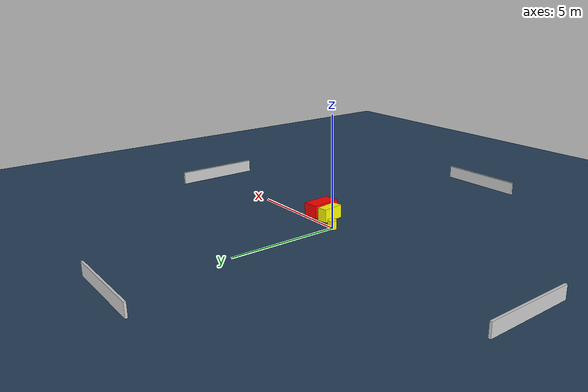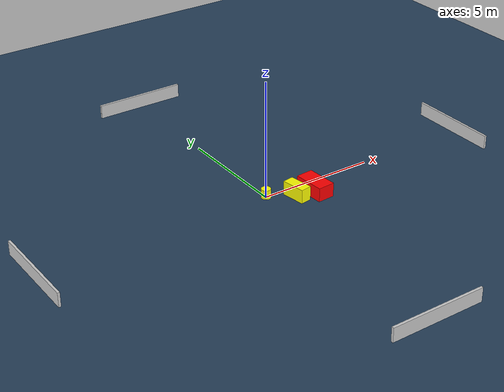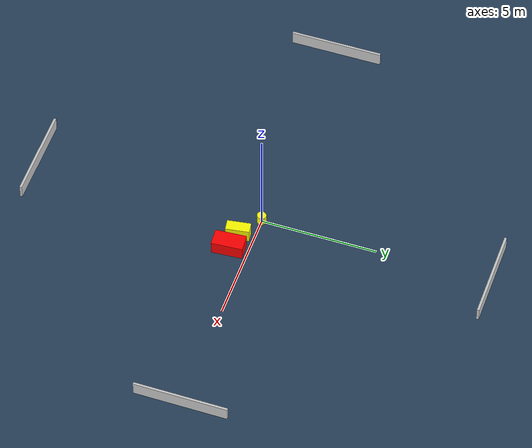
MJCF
<?xml version="1.0" ?>
<mujoco model="generated_environment">
  <option timestep="0.01" integrator="RK4" cone="elliptic"/>
  <default>
    <geom density="1"/>
  </default>
  <asset>
    <texture builtin="gradient" height="3072" name="skybox" rgb1="0.3 0.5 0.7" rgb2="0 0 0" type="skybox" width="512"/>
    <texture builtin="checker" height="300" name="groundplane" rgb1="0.2 0.3 0.4" rgb2="0.1 0.2 0.3" type="2d" width="300"/>
    <material name="groundplane" reflectance="0.2" texrepeat="5 5" texture="groundplane"/>
  </asset>
  <worldbody>
    <light dir="0 0 -1" directional="true" pos="0 0 1.5"/>
    <geom condim="3" friction="0.5 0.005 0.001" material="groundplane" name="floor" pos="0 0 0" size="0 0 0.05" type="plane"/>
    <body name="walls">
      <geom name="wall_1" condim="4" pos="-10.0 0.0 0.3" rgba="0.800000011920929 0.800000011920929 0.800000011920929 1.0" size="0.05 2.0 0.3" type="box"/>
      <geom name="wall_2" condim="4" pos="10.0 0.0 0.3" rgba="0.800000011920929 0.800000011920929 0.800000011920929 1.0" size="0.05 2.0 0.3" type="box"/>
      <geom name="wall_3" condim="4" pos="0.0 -10.0 0.3" rgba="0.800000011920929 0.800000011920929 0.800000011920929 1.0" size="2.0 0.05 0.3" type="box"/>
      <geom name="wall_4" condim="4" pos="0.0 10.0 0.3" rgba="0.800000011920929 0.800000011920929 0.800000011920929 1.0" size="2.0 0.05 0.3" type="box"/>
    </body>
    <body name="robot">
      <joint name="joint_x" type="slide" pos="0 0 0" axis="1 0 0"/>
      <joint name="joint_y" type="slide" pos="0 0 0" axis="0 1 0"/>
      <geom name="robot" type="cylinder" pos="0.0 0.0 0.2" size="0.2 0.2 0.0" mass="5.0" friction="1.0 0.005 0.0001" condim="4" rgba="1.0 1.0 0.0 1.0"/>
    </body>
    <body name="obstacle_1_movable">
      <geom name="obstacle_1_movable" condim="4" pos="1.0220914371048253 -0.6804044385500352 0.3" euler="0 0 278.6300928327621" friction="0.0 0.005 0.001" rgba="1.0 1.0 0.0 1.0" size="0.509780921182981 0.23519626644242575 0.3" type="box" mass="0.1"/>
      <joint type="free"/>
    </body>
    <body name="obstacle_2_static">
      <geom name="obstacle_2_static" condim="4" pos="1.8248114057652896 -0.8109038804207171 0.3" euler="0 0 3.9781416935691194" friction="0.0 0.005 0.001" rgba="1.0 0.0 0.0 1.0" size="0.3676836237540252 0.6708664600544039 0.3" type="box"/>
    </body>
  </worldbody>
  <actuator>
    <motor name="actuator_x" joint="joint_x" gear="1" ctrlrange="-1 1"/>
    <motor name="actuator_y" joint="joint_y" gear="1" ctrlrange="-1 1"/>
  </actuator>
</mujoco>
